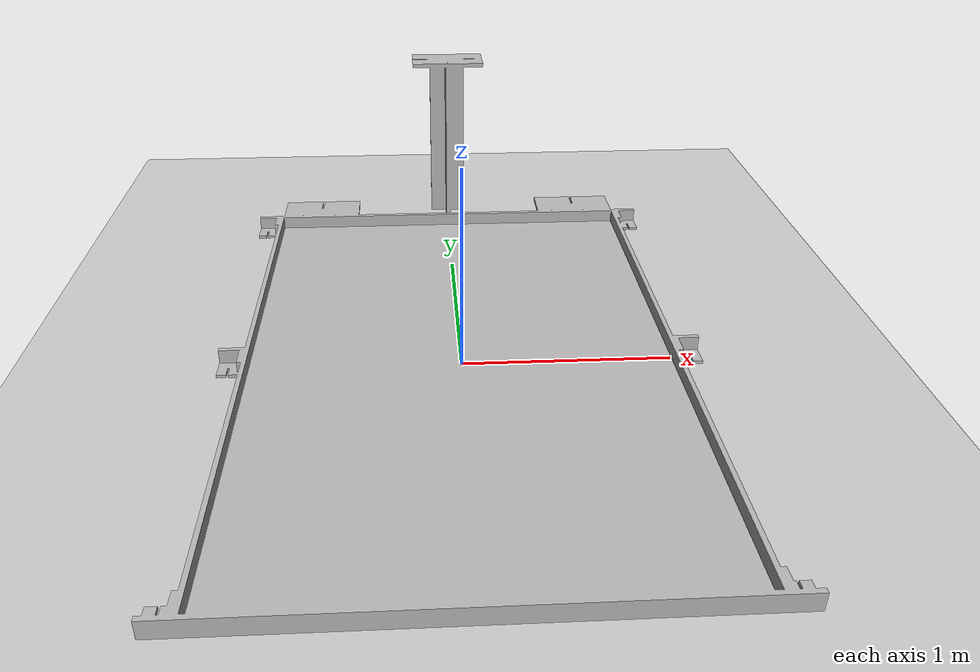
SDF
<?xml version="1.0"?>
<sdf version="1.4">
  <world name="default">
    <include>
      <uri>model://ground_plane</uri>
    </include>
    <include>
      <uri>model://sun</uri>
    </include>
    <model name="my_mesh">
    <static>1</static>
      <pose>0 0 0  0 0 0</pose>
      <static>true</static>
      <link name="body">
        <visual name="visual">
          <geometry>
            <mesh><uri>../models/table/table.dae</uri></mesh>
          </geometry>
        </visual>
        <collision name='collision'>
          <geometry>
            <mesh><uri>../models/table/table.dae</uri></mesh>
          </geometry>
          <max_contacts>10</max_contacts>
          <surface>
            <bounce/>
            <friction>
              <ode/>
            </friction>
            <contact>
              <ode/>
            </contact>
          </surface>
        </collision>
      </link>
    </model>
  </world>
</sdf>
